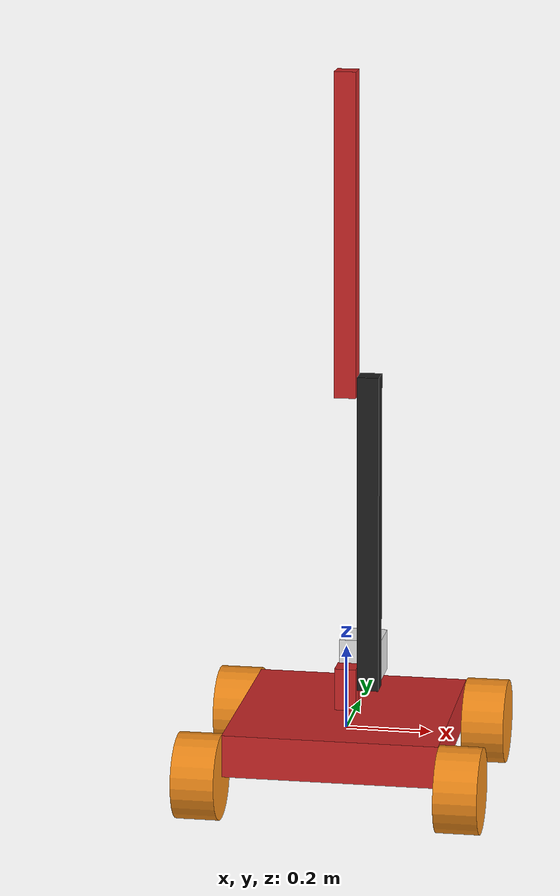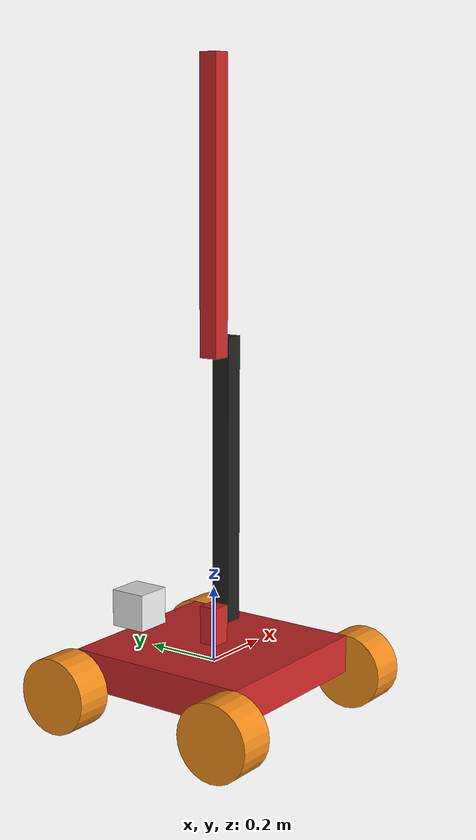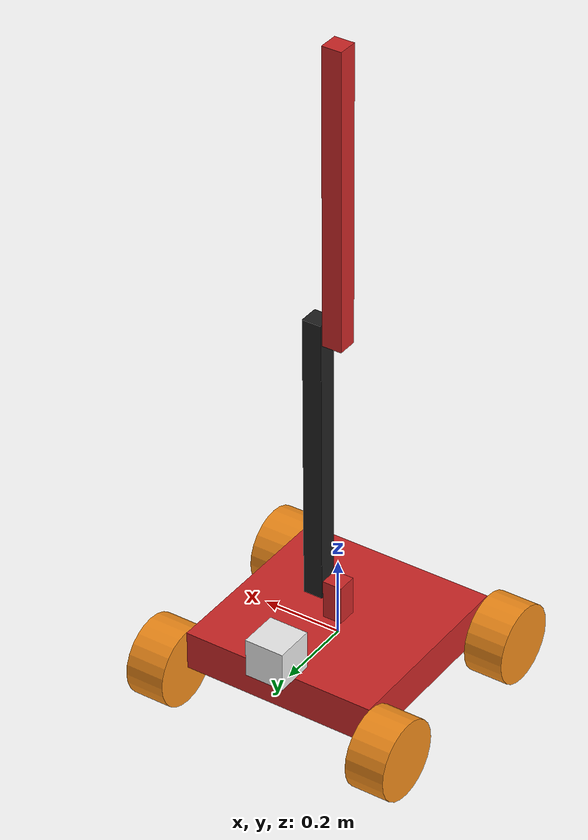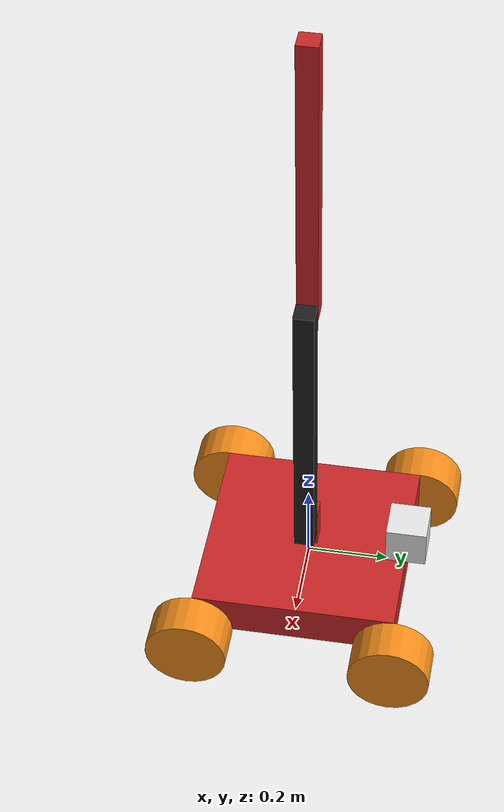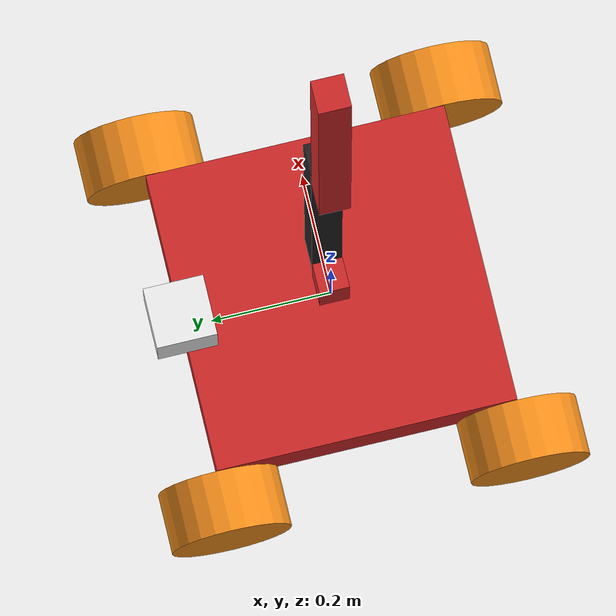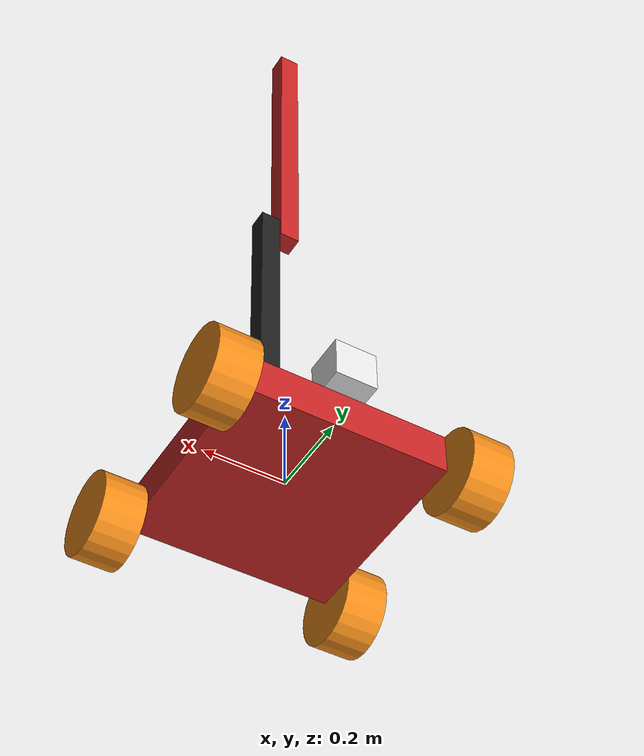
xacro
<?xml version="1.0"?>
<robot xmlns:xacro="http://www.ros.org/wiki/xacro" name="pendulum">

    <xacro:include filename="$(find double_inverted_pendulum)/description/materials.xacro" />
    <xacro:include filename="$(find double_inverted_pendulum)/description/pendulum2.gazebo" />

    <!-- #region XACRO_MACROS -->

    <!-- #region CONSTANTS -->
    <xacro:property name="boxheight" value="0.1" />
    <xacro:property name="pendulumlength" value="0.75" />
    <xacro:property name="pendulummass" value="1" />
    <xacro:property name="pendulumwidth" value="0.05" />
    <xacro:property name="pitchlimit" value="0" />
    <xacro:property name="pendulumdamping" value="0.0" />
    <xacro:property name="pendulumfriction" value="0.01" />
    <xacro:property name="camerasize" value="0.10" />
    <!-- #endregion -->

    <!-- #region MAKE_BOX -->
    <xacro:macro name="make_box" params="length width height mass material originxyz originrpy">
        <visual>
            <origin rpy="${originrpy}" xyz="${originxyz}"/>
            <geometry>
                <box size="${length} ${width} ${height}"/>
            </geometry>
            <material name="${material}"/>
        </visual>
        <collision>
            <origin rpy="${originrpy}" xyz="${originxyz}"/>
            <geometry>
                <box size="${length} ${width} ${height}"/>
            </geometry>
        </collision>
        <inertial>
            <mass value="${mass}"/>
            <inertia
                ixx="${1/12 * mass * (height*height + length*length)}"
                iyy="${1/12 * mass * (width*width + length*length)}"
                izz="${1/12 * mass * (width*width + height*height)}"
                ixy="0"
                ixz="0"
                iyz="0"
            />
        </inertial>
    </xacro:macro>
    <!-- #endregion -->

    <!-- #region MAKE_CYLINDER -->
    <xacro:macro name="make_cylinder" params="length radius mass material originxyz originrpy">
        <visual>
            <origin rpy="${originrpy}" xyz="${originxyz}"/>
            <geometry>
                <cylinder length="${length}" radius="${radius}"/>
            </geometry>
            <material name="${material}"/>
        </visual>
        <collision>
            <origin xyz="${originxyz}" rpy="${originrpy}"/>
            <geometry>
                <cylinder length="${length}" radius="${length}"/>
            </geometry>
        </collision>
        <inertial>
            <mass value="${mass}"/>
            <inertia
                ixx="${1/12 * mass * (3*radius*radius + length*length)}"
                iyy="${1/12 * mass * (3*radius*radius + length*length)}"
                izz="${1/2 * mass * radius*radius}"
                ixy="0"
                ixz="0"
                iyz="0"
            />
        </inertial>
    </xacro:macro>
    <!-- #endregion -->

    <!-- #endregion -->

    <!-- ROBOT BEGINS HERE -->
    <!-- ROBOT BEGINS HERE -->
    <!-- ROBOT BEGINS HERE -->

    <!-- #region BASE -->
    <link name="base_link">
        <xacro:make_box length="0.5" width="0.5" height="${boxheight}" mass="10" material="red" originxyz="0 0 0" originrpy="0 0 0"/>
    </link>
    <!-- #endregion -->

    <!-- #region PENDULUM_JOINT -->
    <link name="pendulum_joint">
        <xacro:make_box length="${pendulumwidth}" width="${pendulumwidth}" height="${pendulumwidth*2}" mass="100" material="red" originxyz="0 0 ${-pendulumwidth/2}" originrpy="0 0 0"/>
    </link>

    <joint name="base_to_pendulum_joint" type="fixed">
        <parent link="base_link"/>
        <child link="pendulum_joint"/>
        <!-- joint of child is xyz away from parent -->
        <origin xyz="0 0 ${1.5*pendulumwidth + boxheight/2}"/>
    </joint>
    <!-- #endregion -->

    <!-- #region FIRST_PENDULUM -->
    <link name="first_pendulum">
        <xacro:make_box length="${pendulumwidth}" width="${pendulumwidth}" height="${pendulumlength}" mass="10" material="black" originxyz="0 0 ${pendulumlength/2 - pendulumwidth/2}" originrpy="0 0 0"/>
    </link>

    <joint name="pendulum_joint_to_first_pendulum" type="continuous">
        <parent link="pendulum_joint"/>
        <child link="first_pendulum"/>
        <!-- joint of child is xyz away from parent -->
        <origin xyz="${pendulumwidth + 0.003} 0 0"/>
        <axis xyz="1 0 0"/>
        <dynamics friction="${pendulumfriction}" damping="${pendulumdamping}"/>
    </joint>
    <!-- #endregion -->

    <!-- #region SECOND_PENDULUM -->
    <link name="second_pendulum">
        <xacro:make_box length="${pendulumwidth}" width="${pendulumwidth}" height="${pendulumlength}" mass="10" material="red" originxyz="0 0 ${pendulumlength/2 - pendulumwidth/2}" originrpy="0 0 0"/>
    </link>

    <joint name="first_pendulum_to_second_pendulum" type="continuous">
        <parent link="first_pendulum"/>
        <child link="second_pendulum"/>
        <!-- joint of child is xyz away from parent -->
        <origin xyz="${-pendulumwidth - 0.003} 0 ${pendulumlength - pendulumwidth}"/>
        <axis xyz="1 0 0"/>
        <dynamics friction="${pendulumfriction}" damping="${pendulumdamping}"/>
    </joint>
    <!-- #endregion -->

    <!-- #region WHEELS -->
    <!-- #region FRONT_LEFT_WHEEL -->
    <link name="front_left_wheel">
        <xacro:make_cylinder length="0.1" radius="0.1" mass="5" material="orange" originxyz="0.051 0 0" originrpy="0 1.570796327 0"/>
    </link>

    <joint name="base_to_front_left_wheel" type="continuous">
        <parent link="base_link"/>
        <child link="front_left_wheel"/>
        <!-- joint of child is xyz away from parent -->
        <origin xyz="0.25 0.25 ${-boxheight/2}"/>
        <axis xyz="1 0 0"/>
    </joint>
    <!-- #endregion -->

    <!-- #region FRONT_RIGHT_WHEEL -->
    <link name="front_right_wheel">
        <xacro:make_cylinder length="0.1" radius="0.1" mass="5" material="orange" originxyz="0.051 0 0" originrpy="0 -1.570796327 0"/>
    </link>

    <joint name="base_to_front_right_wheel" type="continuous">
        <parent link="base_link"/>
        <child link="front_right_wheel"/>
        <!-- joint of child is xyz away from parent -->
        <origin xyz="0.25 -0.25 ${-boxheight/2}"/>
        <axis xyz="1 0 0"/>
    </joint>
    <!-- #endregion -->

    <!-- #region BACK_LEFT_WHEEL -->
    <link name="back_left_wheel">
        <xacro:make_cylinder length="0.1" radius="0.1" mass="5" material="orange" originxyz="-0.051 0 0" originrpy="0 1.570796327 0"/>
    </link>

    <joint name="base_to_back_left_wheel" type="continuous">
        <parent link="base_link"/>
        <child link="back_left_wheel"/>
        <!-- joint of child is xyz away from parent -->
        <origin xyz="-0.25 0.25 ${-boxheight/2}"/>
        <axis xyz="1 0 0"/>
    </joint>
    <!-- #endregion -->

    <!-- #region BACK_RIGHT_WHEEL -->
    <link name="back_right_wheel">
        <xacro:make_cylinder length="0.1" radius="0.1" mass="5" material="orange" originxyz="-0.051 0 0" originrpy="0 1.570796327 0"/>
    </link>

    <joint name="base_to_back_right_wheel" type="continuous">
        <parent link="base_link"/>
        <child link="back_right_wheel"/>
        <!-- joint of child is xyz away from parent -->
        <origin xyz="-0.25 -0.25 ${-boxheight/2}"/>
        <axis xyz="1 0 0"/>
    </joint>
    <!-- #endregion -->
    <!-- #endregion -->

    <!-- #region CAMERA -->
    <link name="camera">
        <xacro:make_box length="${camerasize}" width="${camerasize}" height="${camerasize}" mass="1" material="white" originxyz="0 0 ${camerasize/2}" originrpy="0 0 0"/>
    </link>

    <joint name="base_to_camera" type="fixed">
        <axis xyz="0 1 0" />
        <origin xyz="0 ${0.5/2} ${boxheight/2}" rpy="0 0 1.57"/>
        <parent link="base_link"/>
        <child link="camera"/>
    </joint>
    <!-- #endregion -->

</robot>
